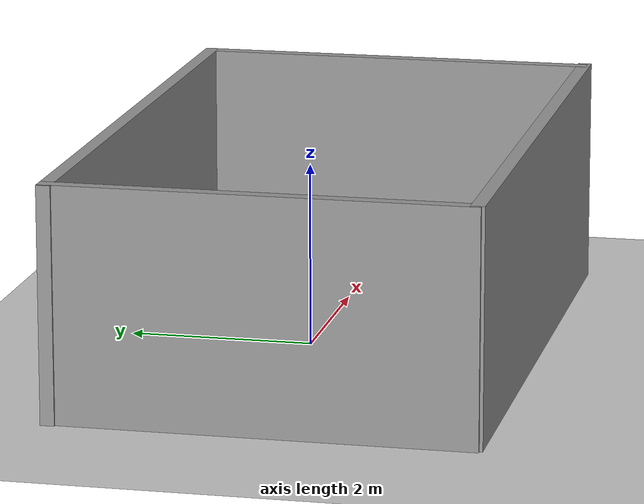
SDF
<sdf version="1.7">
 <world name="default">
  <light name="sun" type="directional">
   <pose>0 0 10 0 -0 0</pose>
   <diffuse>0.8 0.8 0.8 1</diffuse>
   <specular>0.2 0.2 0.2 1</specular>
   <attenuation>
    <range>1000</range>
    <constant>0.9</constant>
    <linear>0.01</linear>
    <quadratic>0.001</quadratic>
   </attenuation>
   <direction>-0.5 0.1 -0.9</direction>
   <spot><inner_angle>0</inner_angle><outer_angle>0</outer_angle><falloff>0</falloff></spot>
  </light>
  <model name="ground_plane">
   <static>1</static>
   <link name="link">
    <collision name="collision">
     <geometry><plane><normal>0 0 1</normal><size>100 100</size></plane></geometry>
     <surface>
      <contact><collide_bitmask>65535</collide_bitmask></contact>
      <friction><ode><mu>100</mu><mu2>50</mu2></ode></friction>
     </surface>
    </collision>
    <visual name="visual">
     <cast_shadows>0</cast_shadows>
     <geometry><plane><normal>0 0 1</normal><size>100 100</size></plane></geometry>
     <material>
      <script><uri>file://media/materials/scripts/gazebo.material</uri><name>Gazebo/Grey</name></script>
     </material>
    </visual>
   </link>
  </model>
  <gravity>0 0 -9.8</gravity>
  <magnetic_field>6e-06 2.3e-05 -4.2e-05</magnetic_field>
  <atmosphere type="adiabatic"/>
  <physics type="ode">
   <max_step_size>0.001</max_step_size>
   <real_time_factor>1</real_time_factor>
   <real_time_update_rate>1000</real_time_update_rate>
  </physics>
  <scene><ambient>0.4 0.4 0.4 1</ambient><background>0.7 0.7 0.7 1</background><shadows>1</shadows></scene>
  <spherical_coordinates>
   <surface_model>EARTH_WGS84</surface_model>
   <latitude_deg>0</latitude_deg>
   <longitude_deg>0</longitude_deg>
   <elevation>0</elevation>
   <heading_deg>0</heading_deg>
  </spherical_coordinates>
  <model name="test">
   <pose>0.010649 -0.2442 0 0 -0 0</pose>
   <link name="Wall_10">
    <collision name="Wall_10_Collision">
     <geometry><box><size>7.0266 0.15 2.5</size></box></geometry>
     <pose>0 0 1.25 0 -0 0</pose>
    </collision>
    <visual name="Wall_10_Visual">
     <pose>0 0 1.25 0 -0 0</pose>
     <geometry><box><size>7.0266 0.15 2.5</size></box></geometry>
     <material>
      <script><uri>file://media/materials/scripts/gazebo.material</uri><name>Gazebo/Grey</name></script>
      <ambient>1 1 1 1</ambient>
     </material>
     <meta><layer>0</layer></meta>
    </visual>
    <pose>-0.020873 2.19249 0 0 -0 0</pose>
   </link>
   <link name="Wall_12">
    <collision name="Wall_12_Collision">
     <geometry><box><size>4.5 0.15 2.5</size></box></geometry>
     <pose>0 0 1.25 0 -0 0</pose>
    </collision>
    <visual name="Wall_12_Visual">
     <pose>0 0 1.25 0 -0 0</pose>
     <geometry><box><size>4.5 0.15 2.5</size></box></geometry>
     <material>
      <script><uri>file://media/materials/scripts/gazebo.material</uri><name>Gazebo/Grey</name></script>
      <ambient>1 1 1 1</ambient>
     </material>
     <meta><layer>0</layer></meta>
    </visual>
    <pose>3.41743 0.017488 0 0 -0 -1.5708</pose>
   </link>
   <link name="Wall_14">
    <collision name="Wall_14_Collision">
     <geometry><box><size>4.5 0.15 2.5</size></box></geometry>
     <pose>0 0 1.25 0 -0 0</pose>
    </collision>
    <visual name="Wall_14_Visual">
     <pose>0 0 1.25 0 -0 0</pose>
     <geometry><box><size>4.5 0.15 2.5</size></box></geometry>
     <material>
      <script><uri>file://media/materials/scripts/gazebo.material</uri><name>Gazebo/Grey</name></script>
      <ambient>1 1 1 1</ambient>
     </material>
     <meta><layer>0</layer></meta>
    </visual>
    <pose>-3.43257 0.017488 0 0 -0 -1.5708</pose>
   </link>
   <link name="Wall_8">
    <collision name="Wall_8_Collision">
     <geometry><box><size>7 0.15 2.5</size></box></geometry>
     <pose>0 0 1.25 0 -0 0</pose>
    </collision>
    <visual name="Wall_8_Visual">
     <pose>0 0 1.25 0 -0 0</pose>
     <geometry><box><size>7 0.15 2.5</size></box></geometry>
     <material>
      <script><uri>file://media/materials/scripts/gazebo.material</uri><name>Gazebo/Grey</name></script>
      <ambient>1 1 1 1</ambient>
     </material>
     <meta><layer>0</layer></meta>
    </visual>
    <pose>0.034174 -2.19249 0 0 -0 0</pose>
   </link>
   <static>1</static>
  </model>
  <model name="beer">
   <link name="link">
    <pose>0 0 0.115 0 -0 0</pose>
    <inertial>
     <mass>0.39</mass>
     <inertia><ixx>0.00058</ixx><ixy>0</ixy><ixz>0</ixz><iyy>0.00058</iyy><iyz>0</iyz><izz>0.00019</izz></inertia>
    </inertial>
    <collision name="collision">
     <geometry><cylinder><radius>0.055</radius><length>0.23</length></cylinder></geometry>
    </collision>
    <visual name="visual">
     <geometry><cylinder><radius>0.055</radius><length>0.23</length></cylinder></geometry>
     <material>
      <script>
       <uri>model://beer/materials/scripts</uri>
       <uri>model://beer/materials/textures</uri>
       <name>Beer/Diffuse</name>
      </script>
     </material>
    </visual>
   </link>
   <pose>0.619724 1.09731 -7e-06 -1e-06 -0 -6e-06</pose>
  </model>
 </world>
</sdf>
